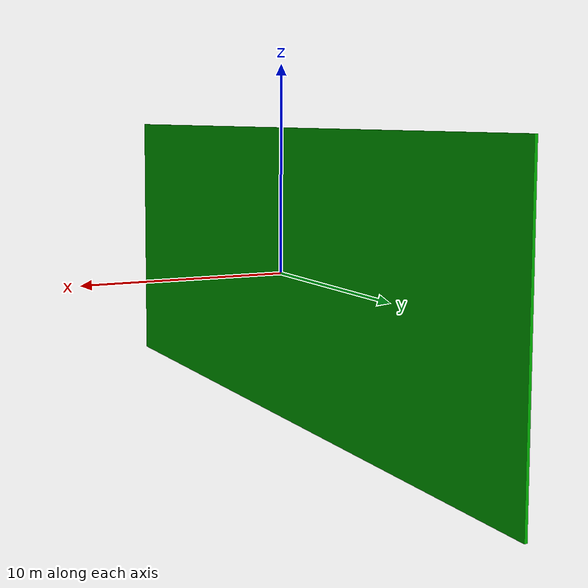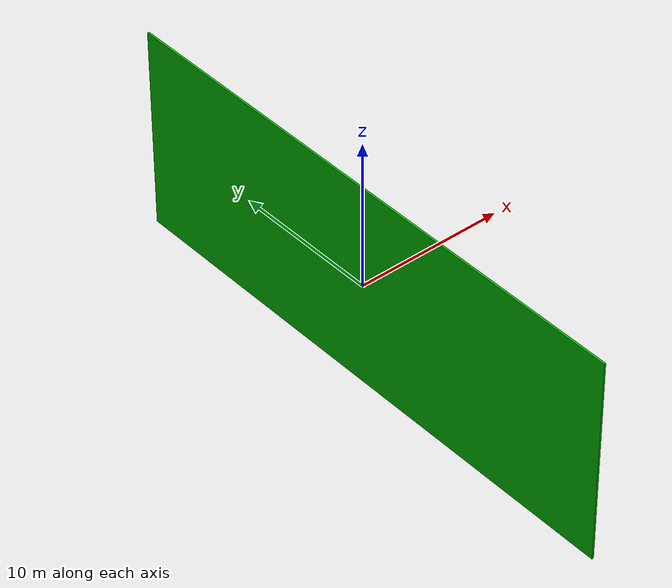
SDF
<?xml version='1.0'?>
<sdf version='1.6'>
  <model name='training_floor'>
    <link name='link'>
      <inertial>
        <mass>71.1099</mass>
        <inertia>
          <ixx>9778.1</ixx>
          <ixy>0</ixy>
          <ixz>0</ixz>
          <iyy>1168.31</iyy>
          <iyz>0</iyz>
          <izz>8610</izz>
        </inertia>
        <pose frame=''>0 0 0 0 -0 0</pose>
      </inertial>
      <self_collide>0</self_collide>
      <enable_wind>0</enable_wind>
      <kinematic>0</kinematic>
      <pose frame=''>0 0 0 0 -0 0</pose>
      <gravity>1</gravity>
      <visual name='visual'>
        <geometry>
          <box>
            <size>0.132868 38.1175 14.0406</size>
          </box>
        </geometry>
        <material>
          <script>
            <name>Gazebo/Grey</name>
            <uri>file://media/materials/scripts/gazebo.material</uri>
          </script>
          <shader type='pixel'>
            <normal_map>__default__</normal_map>
          </shader>
          <ambient>0.3 0.3 0.3 1</ambient>
          <diffuse>0 0.7 0 1</diffuse>
          <specular>0.01 0.01 0.01 1</specular>
          <emissive>0 0.6 0 1</emissive>
        </material>
        <pose frame=''>0 0 0 0 -0 0</pose>
        <transparency>0</transparency>
        <cast_shadows>0</cast_shadows>
      </visual>
    </link>
    <static>1</static>
    <allow_auto_disable>1</allow_auto_disable>
  </model>
</sdf>
